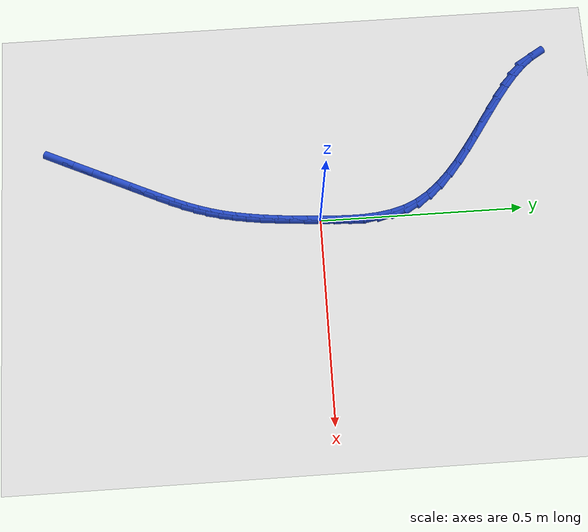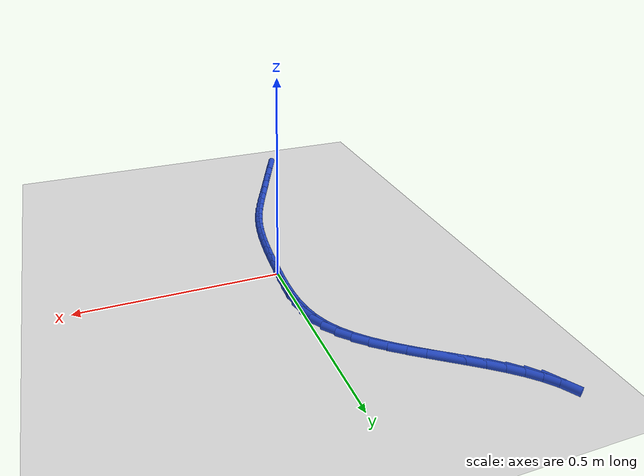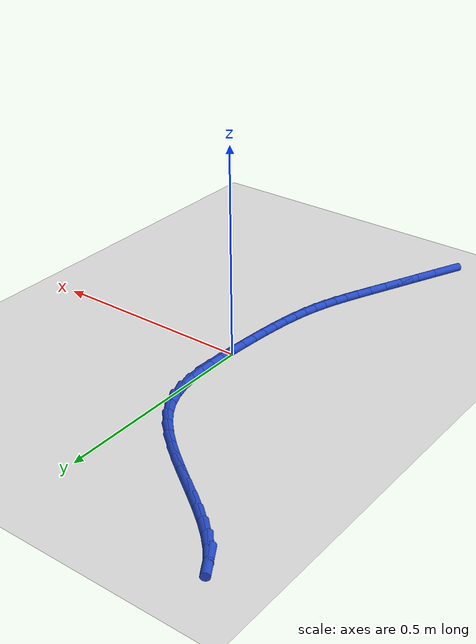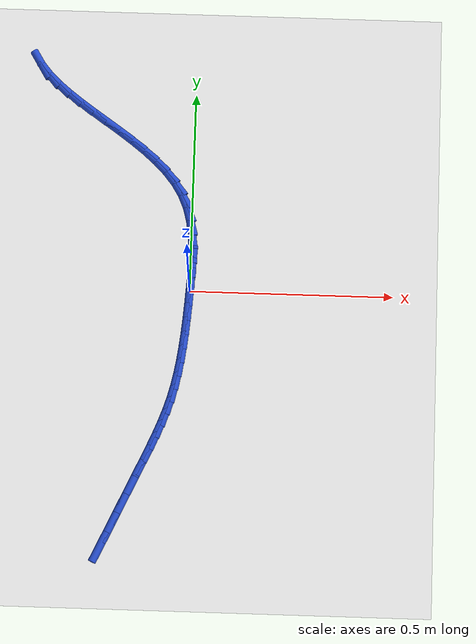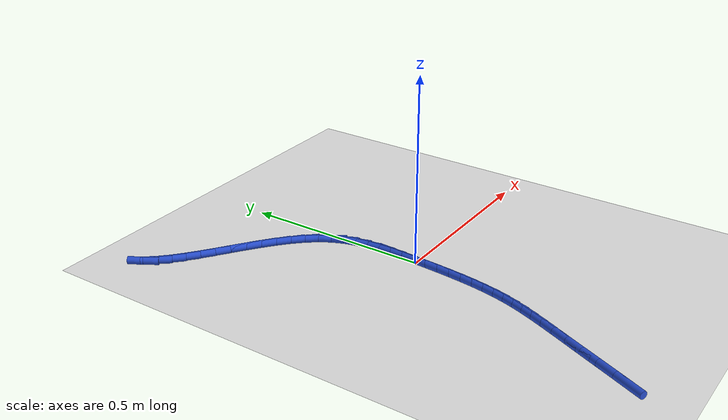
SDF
<sdf version="1.6">
 <world name="default">
  <model name="ground_plane">
   <static>1</static>
   <link name="link">
    <collision name="collision">
     <geometry><plane><normal>0 0 1</normal><size>100 100</size></plane></geometry>
     <surface><friction><ode><mu>100</mu><mu2>50</mu2></ode></friction></surface>
    </collision>
    <visual name="visual">
     <cast_shadows>0</cast_shadows>
     <geometry><plane><normal>0 0 1</normal><size>100 100</size></plane></geometry>
     <material>
      <script><uri>file://media/materials/scripts/gazebo.material</uri><name>Gazebo/WhiteGlow</name></script>
     </material>
    </visual>
   </link>
  </model>
  <model name="line">
   <link name="link_0">
    <pose>2.168404344971009e-18 2.7755575615628914e-17 0.01 0 1.57 1.5134718039770452</pose>
    <collision name="collision">
     <geometry><cylinder><radius>0.01</radius><length>0.08</length></cylinder></geometry>
    </collision>
    <visual name="visual">
     <material>
      <script><name>Gazebo/Blue</name><uri>file://media/materials/scripts/gazebo.material</uri></script>
     </material>
     <geometry><cylinder><radius>0.01</radius><length>0.08</length></cylinder></geometry>
    </visual>
   </link>
   <link name="link_1">
    <pose>0.002078381581859288 0.036216690351167265 0.01 0 1.57 1.537497258225407</pose>
    <collision name="collision">
     <geometry><cylinder><radius>0.01</radius><length>0.08</length></cylinder></geometry>
    </collision>
    <visual name="visual">
     <material>
      <script><name>Gazebo/Blue</name><uri>file://media/materials/scripts/gazebo.material</uri></script>
     </material>
     <geometry><cylinder><radius>0.01</radius><length>0.08</length></cylinder></geometry>
    </visual>
   </link>
   <link name="link_2">
    <pose>0.0032791322106102364 0.07226294746520809 0.01 0 1.57 -1.5610327216190534</pose>
    <collision name="collision">
     <geometry><cylinder><radius>0.01</radius><length>0.08</length></cylinder></geometry>
    </collision>
    <visual name="visual">
     <material>
      <script><name>Gazebo/Blue</name><uri>file://media/materials/scripts/gazebo.material</uri></script>
     </material>
     <geometry><cylinder><radius>0.01</radius><length>0.08</length></cylinder></geometry>
    </visual>
   </link>
   <link name="link_3">
    <pose>0.0029313109725265948 0.10788607840744405 0.01 0 1.57 -1.4974650658319524</pose>
    <collision name="collision">
     <geometry><cylinder><radius>0.01</radius><length>0.08</length></cylinder></geometry>
    </collision>
    <visual name="visual">
     <material>
      <script><name>Gazebo/Blue</name><uri>file://media/materials/scripts/gazebo.material</uri></script>
     </material>
     <geometry><cylinder><radius>0.01</radius><length>0.08</length></cylinder></geometry>
    </visual>
   </link>
   <link name="link_4">
    <pose>0.000363976953882102 0.14283339024319658 0.01 0 1.57 -1.4117174796749625</pose>
    <collision name="collision">
     <geometry><cylinder><radius>0.01</radius><length>0.08</length></cylinder></geometry>
    </collision>
    <visual name="visual">
     <material>
      <script><name>Gazebo/Blue</name><uri>file://media/materials/scripts/gazebo.material</uri></script>
     </material>
     <geometry><cylinder><radius>0.01</radius><length>0.08</length></cylinder></geometry>
    </visual>
   </link>
   <link name="link_5">
    <pose>-0.0050938107590494976 0.1768521900377872 0.01 0 1.57 -1.3027459971653474</pose>
    <collision name="collision">
     <geometry><cylinder><radius>0.01</radius><length>0.08</length></cylinder></geometry>
    </collision>
    <visual name="visual">
     <material>
      <script><name>Gazebo/Blue</name><uri>file://media/materials/scripts/gazebo.material</uri></script>
     </material>
     <geometry><cylinder><radius>0.01</radius><length>0.08</length></cylinder></geometry>
    </visual>
   </link>
   <link name="link_6">
    <pose>-0.014112993079994467 0.20968978485653733 0.01 0 1.57 -1.1714922141252915</pose>
    <collision name="collision">
     <geometry><cylinder><radius>0.01</radius><length>0.08</length></cylinder></geometry>
    </collision>
    <visual name="visual">
     <material>
      <script><name>Gazebo/Blue</name><uri>file://media/materials/scripts/gazebo.material</uri></script>
     </material>
     <geometry><cylinder><radius>0.01</radius><length>0.08</length></cylinder></geometry>
    </visual>
   </link>
   <link name="link_7">
    <pose>-0.027364510922679053 0.2410934817647685 0.01 0 1.57 -1.0253797105672267</pose>
    <collision name="collision">
     <geometry><cylinder><radius>0.01</radius><length>0.08</length></cylinder></geometry>
    </collision>
    <visual name="visual">
     <material>
      <script><name>Gazebo/Blue</name><uri>file://media/materials/scripts/gazebo.material</uri></script>
     </material>
     <geometry><cylinder><radius>0.01</radius><length>0.08</length></cylinder></geometry>
    </visual>
   </link>
   <link name="link_8">
    <pose>-0.04541734272024359 0.2708435456552122 0.01 0 1.57 -0.8959484745496338</pose>
    <collision name="collision">
     <geometry><cylinder><radius>0.01</radius><length>0.08</length></cylinder></geometry>
    </collision>
    <visual name="visual">
     <material>
      <script><name>Gazebo/Blue</name><uri>file://media/materials/scripts/gazebo.material</uri></script>
     </material>
     <geometry><cylinder><radius>0.01</radius><length>0.08</length></cylinder></geometry>
    </visual>
   </link>
   <link name="link_9">
    <pose>-0.06795310005016525 0.29900706931562787 0.01 0 1.57 -0.7957365896403423</pose>
    <collision name="collision">
     <geometry><cylinder><radius>0.01</radius><length>0.08</length></cylinder></geometry>
    </collision>
    <visual name="visual">
     <material>
      <script><name>Gazebo/Blue</name><uri>file://media/materials/scripts/gazebo.material</uri></script>
     </material>
     <geometry><cylinder><radius>0.01</radius><length>0.08</length></cylinder></geometry>
    </visual>
   </link>
   <link name="link_10">
    <pose>-0.09419653071799564 0.3257988198278733 0.01 0 1.57 -0.720969327014609</pose>
    <collision name="collision">
     <geometry><cylinder><radius>0.01</radius><length>0.08</length></cylinder></geometry>
    </collision>
    <visual name="visual">
     <material>
      <script><name>Gazebo/Blue</name><uri>file://media/materials/scripts/gazebo.material</uri></script>
     </material>
     <geometry><cylinder><radius>0.01</radius><length>0.08</length></cylinder></geometry>
    </visual>
   </link>
   <link name="link_11">
    <pose>-0.12336860786261167 0.351434784377633 0.01 0 1.57 -0.6676697733295373</pose>
    <collision name="collision">
     <geometry><cylinder><radius>0.01</radius><length>0.08</length></cylinder></geometry>
    </collision>
    <visual name="visual">
     <material>
      <script><name>Gazebo/Blue</name><uri>file://media/materials/scripts/gazebo.material</uri></script>
     </material>
     <geometry><cylinder><radius>0.01</radius><length>0.08</length></cylinder></geometry>
    </visual>
   </link>
   <link name="link_12">
    <pose>-0.15469030462289043 0.376130950150592 0.01 0 1.57 -0.6327092212663911</pose>
    <collision name="collision">
     <geometry><cylinder><radius>0.01</radius><length>0.08</length></cylinder></geometry>
    </collision>
    <visual name="visual">
     <material>
      <script><name>Gazebo/Blue</name><uri>file://media/materials/scripts/gazebo.material</uri></script>
     </material>
     <geometry><cylinder><radius>0.01</radius><length>0.08</length></cylinder></geometry>
    </visual>
   </link>
   <link name="link_13">
    <pose>-0.18738259413770872 0.40010330433243485 0.01 0 1.57 -0.6140619857915841</pose>
    <collision name="collision">
     <geometry><cylinder><radius>0.01</radius><length>0.08</length></cylinder></geometry>
    </collision>
    <visual name="visual">
     <material>
      <script><name>Gazebo/Blue</name><uri>file://media/materials/scripts/gazebo.material</uri></script>
     </material>
     <geometry><cylinder><radius>0.01</radius><length>0.08</length></cylinder></geometry>
    </visual>
   </link>
   <link name="link_14">
    <pose>-0.2206664495459434 0.4235678341088464 0.01 0 1.57 -0.6108317376264476</pose>
    <collision name="collision">
     <geometry><cylinder><radius>0.01</radius><length>0.08</length></cylinder></geometry>
    </collision>
    <visual name="visual">
     <material>
      <script><name>Gazebo/Blue</name><uri>file://media/materials/scripts/gazebo.material</uri></script>
     </material>
     <geometry><cylinder><radius>0.01</radius><length>0.08</length></cylinder></geometry>
    </visual>
   </link>
   <link name="link_15">
    <pose>-0.25376284398647153 0.44674052666551156 0.01 0 1.57 -0.6232705815477121</pose>
    <collision name="collision">
     <geometry><cylinder><radius>0.01</radius><length>0.08</length></cylinder></geometry>
    </collision>
    <visual name="visual">
     <material>
      <script><name>Gazebo/Blue</name><uri>file://media/materials/scripts/gazebo.material</uri></script>
     </material>
     <geometry><cylinder><radius>0.01</radius><length>0.08</length></cylinder></geometry>
    </visual>
   </link>
   <link name="link_16">
    <pose>-0.28589275059817 0.46983736918811486 0.01 0 1.57 -0.6528851833674426</pose>
    <collision name="collision">
     <geometry><cylinder><radius>0.01</radius><length>0.08</length></cylinder></geometry>
    </collision>
    <visual name="visual">
     <material>
      <script><name>Gazebo/Blue</name><uri>file://media/materials/scripts/gazebo.material</uri></script>
     </material>
     <geometry><cylinder><radius>0.01</radius><length>0.08</length></cylinder></geometry>
    </visual>
   </link>
   <link name="link_17">
    <pose>-0.31627714251991573 0.4930743488623413 0.01 0 1.57 -0.7026622671491269</pose>
    <collision name="collision">
     <geometry><cylinder><radius>0.01</radius><length>0.08</length></cylinder></geometry>
    </collision>
    <visual name="visual">
     <material>
      <script><name>Gazebo/Blue</name><uri>file://media/materials/scripts/gazebo.material</uri></script>
     </material>
     <geometry><cylinder><radius>0.01</radius><length>0.08</length></cylinder></geometry>
    </visual>
   </link>
   <link name="link_18">
    <pose>-0.34413699289058575 0.5166674528738755 0.01 0 1.57 -0.7773717675324675</pose>
    <collision name="collision">
     <geometry><cylinder><radius>0.01</radius><length>0.08</length></cylinder></geometry>
    </collision>
    <visual name="visual">
     <material>
      <script><name>Gazebo/Blue</name><uri>file://media/materials/scripts/gazebo.material</uri></script>
     </material>
     <geometry><cylinder><radius>0.01</radius><length>0.08</length></cylinder></geometry>
    </visual>
   </link>
   <link name="link_19">
    <pose>-0.3686932748490567 0.5408326684084022 0.01 0 1.57 -0.8836919375241773</pose>
    <collision name="collision">
     <geometry><cylinder><radius>0.01</radius><length>0.08</length></cylinder></geometry>
    </collision>
    <visual name="visual">
     <material>
      <script><name>Gazebo/Blue</name><uri>file://media/materials/scripts/gazebo.material</uri></script>
     </material>
     <geometry><cylinder><radius>0.01</radius><length>0.08</length></cylinder></geometry>
    </visual>
   </link>
   <link name="link_20">
    <pose>-0.3891669615342059 0.5657859826516064 0.01 0 1.57 -1.0293117213981913</pose>
    <collision name="collision">
     <geometry><cylinder><radius>0.01</radius><length>0.08</length></cylinder></geometry>
    </collision>
    <visual name="visual">
     <material>
      <script><name>Gazebo/Blue</name><uri>file://media/materials/scripts/gazebo.material</uri></script>
     </material>
     <geometry><cylinder><radius>0.01</radius><length>0.08</length></cylinder></geometry>
    </visual>
   </link>
   <link name="link_232">
    <pose>-0.19576345099702905 -0.6398897681856618 0.01 0 1.57 1.1401144485199304</pose>
    <collision name="collision">
     <geometry><cylinder><radius>0.01</radius><length>0.08</length></cylinder></geometry>
    </collision>
    <visual name="visual">
     <material>
      <script><name>Gazebo/Blue</name><uri>file://media/materials/scripts/gazebo.material</uri></script>
     </material>
     <geometry><cylinder><radius>0.01</radius><length>0.08</length></cylinder></geometry>
    </visual>
   </link>
   <link name="link_233">
    <pose>-0.17375286183540467 -0.5919830255154107 0.01 0 1.57 1.1439490955260412</pose>
    <collision name="collision">
     <geometry><cylinder><radius>0.01</radius><length>0.08</length></cylinder></geometry>
    </collision>
    <visual name="visual">
     <material>
      <script><name>Gazebo/Blue</name><uri>file://media/materials/scripts/gazebo.material</uri></script>
     </material>
     <geometry><cylinder><radius>0.01</radius><length>0.08</length></cylinder></geometry>
    </visual>
   </link>
   <link name="link_234">
    <pose>-0.15275133268222738 -0.5458065990046115 0.01 0 1.57 1.1451966958902717</pose>
    <collision name="collision">
     <geometry><cylinder><radius>0.01</radius><length>0.08</length></cylinder></geometry>
    </collision>
    <visual name="visual">
     <material>
      <script><name>Gazebo/Blue</name><uri>file://media/materials/scripts/gazebo.material</uri></script>
     </material>
     <geometry><cylinder><radius>0.01</radius><length>0.08</length></cylinder></geometry>
    </visual>
   </link>
   <link name="link_235">
    <pose>-0.1330118156555373 -0.5022609022516382 0.01 0 1.57 1.1436130646373943</pose>
    <collision name="collision">
     <geometry><cylinder><radius>0.01</radius><length>0.08</length></cylinder></geometry>
    </collision>
    <visual name="visual">
     <material>
      <script><name>Gazebo/Blue</name><uri>file://media/materials/scripts/gazebo.material</uri></script>
     </material>
     <geometry><cylinder><radius>0.01</radius><length>0.08</length></cylinder></geometry>
    </visual>
   </link>
   <link name="link_236">
    <pose>-0.11478094146590363 -0.46221207856682234 0.01 0 1.57 1.143218687320393</pose>
    <collision name="collision">
     <geometry><cylinder><radius>0.01</radius><length>0.08</length></cylinder></geometry>
    </collision>
    <visual name="visual">
     <material>
      <script><name>Gazebo/Blue</name><uri>file://media/materials/scripts/gazebo.material</uri></script>
     </material>
     <geometry><cylinder><radius>0.01</radius><length>0.08</length></cylinder></geometry>
    </visual>
   </link>
   <link name="link_237">
    <pose>-0.09815990953484648 -0.4257378436533637 0.01 0 1.57 1.1496576393373332</pose>
    <collision name="collision">
     <geometry><cylinder><radius>0.01</radius><length>0.08</length></cylinder></geometry>
    </collision>
    <visual name="visual">
     <material>
      <script><name>Gazebo/Blue</name><uri>file://media/materials/scripts/gazebo.material</uri></script>
     </material>
     <geometry><cylinder><radius>0.01</radius><length>0.08</length></cylinder></geometry>
    </visual>
   </link>
   <link name="link_238">
    <pose>-0.08310446637087622 -0.39212736837720896 0.01 0 1.57 1.1647265937972398</pose>
    <collision name="collision">
     <geometry><cylinder><radius>0.01</radius><length>0.08</length></cylinder></geometry>
    </collision>
    <visual name="visual">
     <material>
      <script><name>Gazebo/Blue</name><uri>file://media/materials/scripts/gazebo.material</uri></script>
     </material>
     <geometry><cylinder><radius>0.01</radius><length>0.08</length></cylinder></geometry>
    </visual>
   </link>
   <link name="link_239">
    <pose>-0.06956403275023994 -0.3606355298702376 0.01 0 1.57 1.189469506261543</pose>
    <collision name="collision">
     <geometry><cylinder><radius>0.01</radius><length>0.08</length></cylinder></geometry>
    </collision>
    <visual name="visual">
     <material>
      <script><name>Gazebo/Blue</name><uri>file://media/materials/scripts/gazebo.material</uri></script>
     </material>
     <geometry><cylinder><radius>0.01</radius><length>0.08</length></cylinder></geometry>
    </visual>
   </link>
   <link name="link_240">
    <pose>-0.05748802944918506 -0.33051720526433 0.01 0 1.57 1.2238672564557598</pose>
    <collision name="collision">
     <geometry><cylinder><radius>0.01</radius><length>0.08</length></cylinder></geometry>
    </collision>
    <visual name="visual">
     <material>
      <script><name>Gazebo/Blue</name><uri>file://media/materials/scripts/gazebo.material</uri></script>
     </material>
     <geometry><cylinder><radius>0.01</radius><length>0.08</length></cylinder></geometry>
    </visual>
   </link>
   <link name="link_241">
    <pose>-0.046825877243957974 -0.30102727169136395 0.01 0 1.57 1.2664720961287066</pose>
    <collision name="collision">
     <geometry><cylinder><radius>0.01</radius><length>0.08</length></cylinder></geometry>
    </collision>
    <visual name="visual">
     <material>
      <script><name>Gazebo/Blue</name><uri>file://media/materials/scripts/gazebo.material</uri></script>
     </material>
     <geometry><cylinder><radius>0.01</radius><length>0.08</length></cylinder></geometry>
    </visual>
   </link>
   <link name="link_242">
    <pose>-0.037526996910806146 -0.27142060628321996 0.01 0 1.57 1.3144230947451978</pose>
    <collision name="collision">
     <geometry><cylinder><radius>0.01</radius><length>0.08</length></cylinder></geometry>
    </collision>
    <visual name="visual">
     <material>
      <script><name>Gazebo/Blue</name><uri>file://media/materials/scripts/gazebo.material</uri></script>
     </material>
     <geometry><cylinder><radius>0.01</radius><length>0.08</length></cylinder></geometry>
    </visual>
   </link>
   <link name="link_243">
    <pose>-0.02954055738267086 -0.24095450653805003 0.01 0 1.57 1.3613187219796208</pose>
    <collision name="collision">
     <geometry><cylinder><radius>0.01</radius><length>0.08</length></cylinder></geometry>
    </collision>
    <visual name="visual">
     <material>
      <script><name>Gazebo/Blue</name><uri>file://media/materials/scripts/gazebo.material</uri></script>
     </material>
     <geometry><cylinder><radius>0.01</radius><length>0.08</length></cylinder></geometry>
    </visual>
   </link>
   <link name="link_244">
    <pose>-0.022785245938738964 -0.20917921705638223 0.01 0 1.57 1.4006197757343146</pose>
    <collision name="collision">
     <geometry><cylinder><radius>0.01</radius><length>0.08</length></cylinder></geometry>
    </collision>
    <visual name="visual">
     <material>
      <script><name>Gazebo/Blue</name><uri>file://media/materials/scripts/gazebo.material</uri></script>
     </material>
     <geometry><cylinder><radius>0.01</radius><length>0.08</length></cylinder></geometry>
    </visual>
   </link>
   <link name="link_245">
    <pose>-0.01712054531866138 -0.176213973821045 0.01 0 1.57 1.432695761404714</pose>
    <collision name="collision">
     <geometry><cylinder><radius>0.01</radius><length>0.08</length></cylinder></geometry>
    </collision>
    <visual name="visual">
     <material>
      <script><name>Gazebo/Blue</name><uri>file://media/materials/scripts/gazebo.material</uri></script>
     </material>
     <geometry><cylinder><radius>0.01</radius><length>0.08</length></cylinder></geometry>
    </visual>
   </link>
   <link name="link_246">
    <pose>-0.012399135391692727 -0.14224339250805776 0.01 0 1.57 1.458443301029202</pose>
    <collision name="collision">
     <geometry><cylinder><radius>0.01</radius><length>0.08</length></cylinder></geometry>
    </collision>
    <visual name="visual">
     <material>
      <script><name>Gazebo/Blue</name><uri>file://media/materials/scripts/gazebo.material</uri></script>
     </material>
     <geometry><cylinder><radius>0.01</radius><length>0.08</length></cylinder></geometry>
    </visual>
   </link>
   <link name="link_247">
    <pose>-0.00847369602708763 -0.10745208879344005 0.01 0 1.57 1.4785656981332362</pose>
    <collision name="collision">
     <geometry><cylinder><radius>0.01</radius><length>0.08</length></cylinder></geometry>
    </collision>
    <visual name="visual">
     <material>
      <script><name>Gazebo/Blue</name><uri>file://media/materials/scripts/gazebo.material</uri></script>
     </material>
     <geometry><cylinder><radius>0.01</radius><length>0.08</length></cylinder></geometry>
    </visual>
   </link>
   <link name="link_248">
    <pose>-0.005196907094100727 -0.0720246783532115 0.01 0 1.57 1.493593787170753</pose>
    <collision name="collision">
     <geometry><cylinder><radius>0.01</radius><length>0.08</length></cylinder></geometry>
    </collision>
    <visual name="visual">
     <material>
      <script><name>Gazebo/Blue</name><uri>file://media/materials/scripts/gazebo.material</uri></script>
     </material>
     <geometry><cylinder><radius>0.01</radius><length>0.08</length></cylinder></geometry>
    </visual>
   </link>
   <link name="link_249">
    <pose>-0.0024214484619866448 -0.03614577686339171 0.01 0 1.57 1.5039050865539418</pose>
    <collision name="collision">
     <geometry><cylinder><radius>0.01</radius><length>0.08</length></cylinder></geometry>
    </collision>
    <visual name="visual">
     <material>
      <script><name>Gazebo/Blue</name><uri>file://media/materials/scripts/gazebo.material</uri></script>
     </material>
     <geometry><cylinder><radius>0.01</radius><length>0.08</length></cylinder></geometry>
    </visual>
   </link>
   <link name="link_250">
    <pose>-9.974659986866641e-18 -1.457167719820518e-16 0.01 0 1.57 1.509738491535228</pose>
    <collision name="collision">
     <geometry><cylinder><radius>0.01</radius><length>0.08</length></cylinder></geometry>
    </collision>
    <visual name="visual">
     <material>
      <script><name>Gazebo/Blue</name><uri>file://media/materials/scripts/gazebo.material</uri></script>
     </material>
     <geometry><cylinder><radius>0.01</radius><length>0.08</length></cylinder></geometry>
    </visual>
   </link>
   <link name="link_251">
    <pose>0.0022147584226045484 0.036228036560943574 0.01 0 1.57 1.5112033618328562</pose>
    <collision name="collision">
     <geometry><cylinder><radius>0.01</radius><length>0.08</length></cylinder></geometry>
    </collision>
    <visual name="visual">
     <material>
      <script><name>Gazebo/Blue</name><uri>file://media/materials/scripts/gazebo.material</uri></script>
     </material>
     <geometry><cylinder><radius>0.01</radius><length>0.08</length></cylinder></geometry>
    </visual>
   </link>
   <link name="link_252">
    <pose>0.0043701469365724 0.07235371714341989 0.01 0 1.57 1.5104698581349525</pose>
    <collision name="collision">
     <geometry><cylinder><radius>0.01</radius><length>0.08</length></cylinder></geometry>
    </collision>
    <visual name="visual">
     <material>
      <script><name>Gazebo/Blue</name><uri>file://media/materials/scripts/gazebo.material</uri></script>
     </material>
     <geometry><cylinder><radius>0.01</radius><length>0.08</length></cylinder></geometry>
    </visual>
   </link>
  </model>
 </world>
</sdf>
